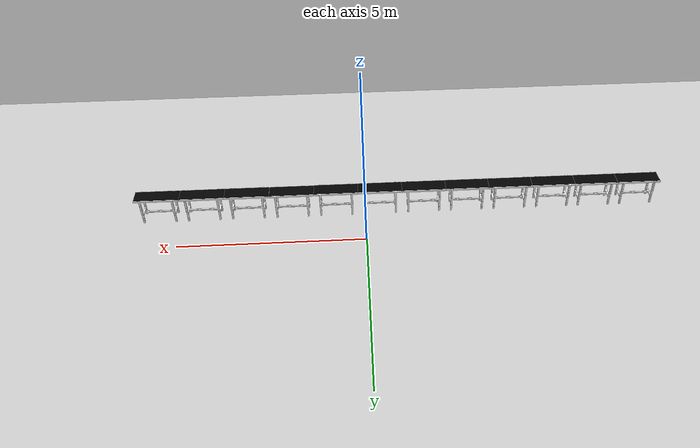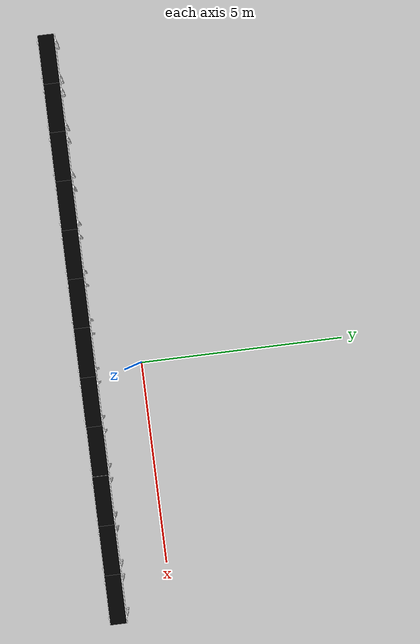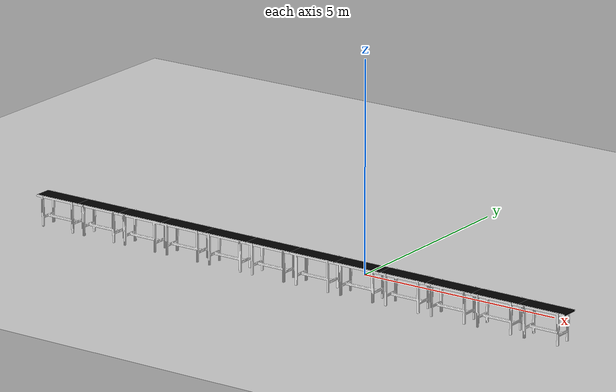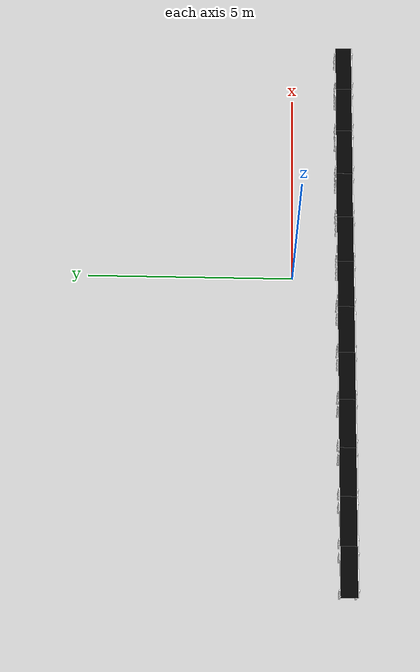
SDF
<sdf version="1.8">
 <world name="empty_world">
  <light name="sun" type="directional">
   <pose>0 0 10 0 0 0</pose>
   <diffuse>0.8 0.8 0.8 1</diffuse>
   <specular>0.2 0.2 0.2 1</specular>
   <attenuation>
    <range>1000</range>
    <constant>0.9</constant>
    <linear>0.01</linear>
    <quadratic>0.001</quadratic>
   </attenuation>
   <direction>-0.5 0.1 -0.9</direction>
  </light>
  <model name="ground_plane">
   <static>true</static>
   <link name="link">
    <collision name="collision">
     <geometry><plane><normal>0 0 1</normal><size>100 100</size></plane></geometry>
    </collision>
    <visual name="visual">
     <geometry><plane><normal>0 0 1</normal><size>100 100</size></plane></geometry>
     <material>
      <ambient>0.8 0.8 0.8 1</ambient>
      <diffuse>0.8 0.8 0.8 1</diffuse>
      <specular>0.8 0.8 0.8 1</specular>
     </material>
    </visual>
   </link>
  </model>
  <model name="conveyor_belt_0">
   <pose>1.980528 -1.256258 0 0 0 1.57</pose>
   <model name="conveyorbelt_fixed_0">
    <static>true</static>
    <link name="belt_visual">
     <visual name="visual">
      <geometry>
       <mesh><scale>1 1 1</scale><uri>model://conveyor_belt/meshes/conveyor_belt.dae</uri></mesh>
      </geometry>
     </visual>
     <collision name="collision">
      <origin xyz="0 0 0" rpy="0.0 0.0 0.0"/>
      <geometry>
       <mesh><scale>1 1 1</scale><uri>model://conveyor_belt/meshes/conveyor_belt.dae</uri></mesh>
      </geometry>
     </collision>
    </link>
   </model>
   <model name="conveyorbelt_moving_0">
    <allow_auto_disable>0</allow_auto_disable>
    <static>false</static>
    <pose>0 0 0.741 0 0 0.0</pose>
    <link name="belt_moving">
     <inertial>
      <mass>100.0</mass>
      <inertia><ixx>0.0</ixx><ixy>0.0</ixy><ixz>0.0</ixz><iyy>0.0</iyy><iyz>0.0</iyz><izz>0.0</izz></inertia>
     </inertial>
     <collision name="belt_collision">
      <geometry><box><size>0.425 1.2 0.00001</size></box></geometry>
      <surface>
       <friction>
        <ode><mu>100.0</mu><mu2>100.0</mu2></ode>
        <torsional><coefficient>1000.0</coefficient><patch_radius>0.1</patch_radius></torsional>
       </friction>
      </surface>
     </collision>
    </link>
   </model>
   <joint name="belt_joint" type="prismatic">
    <parent>conveyorbelt_fixed_0::belt_visual</parent>
    <child>conveyorbelt_moving_0::belt_moving</child>
    <axis><xyz>0 1 0</xyz><limit><lower>0.0</lower><upper>0.01</upper></limit></axis>
   </joint>
  </model>
  <model name="conveyor_belt_1">
   <pose>0.782638 -1.263266 0 0 0 1.57</pose>
   <model name="conveyorbelt_fixed_1">
    <static>true</static>
    <link name="belt_visual">
     <visual name="visual">
      <geometry>
       <mesh><scale>1 1 1</scale><uri>model://conveyor_belt/meshes/conveyor_belt.dae</uri></mesh>
      </geometry>
     </visual>
     <collision name="collision">
      <origin xyz="0 0 0" rpy="0.0 0.0 0.0"/>
      <geometry>
       <mesh><scale>1 1 1</scale><uri>model://conveyor_belt/meshes/conveyor_belt.dae</uri></mesh>
      </geometry>
     </collision>
    </link>
   </model>
   <model name="conveyorbelt_moving_1">
    <allow_auto_disable>0</allow_auto_disable>
    <static>false</static>
    <pose>0 0 0.741 0 0 0.0</pose>
    <link name="belt_moving">
     <inertial>
      <mass>100.0</mass>
      <inertia><ixx>0.0</ixx><ixy>0.0</ixy><ixz>0.0</ixz><iyy>0.0</iyy><iyz>0.0</iyz><izz>0.0</izz></inertia>
     </inertial>
     <collision name="belt_collision">
      <geometry><box><size>0.425 1.2 0.00001</size></box></geometry>
      <surface>
       <friction>
        <ode><mu>100.0</mu><mu2>100.0</mu2></ode>
        <torsional><coefficient>1000.0</coefficient><patch_radius>0.1</patch_radius></torsional>
       </friction>
      </surface>
     </collision>
    </link>
   </model>
   <joint name="belt_joint" type="prismatic">
    <parent>conveyorbelt_fixed_1::belt_visual</parent>
    <child>conveyorbelt_moving_1::belt_moving</child>
    <axis><xyz>0 1 0</xyz><limit><lower>0.0</lower><upper>0.01</upper></limit></axis>
   </joint>
  </model>
  <model name="conveyor_belt_2">
   <pose>-0.415252 -1.263266 0 0 0 1.57</pose>
   <model name="conveyorbelt_fixed_2">
    <static>true</static>
    <link name="belt_visual">
     <visual name="visual">
      <geometry>
       <mesh><scale>1 1 1</scale><uri>model://conveyor_belt/meshes/conveyor_belt.dae</uri></mesh>
      </geometry>
     </visual>
     <collision name="collision">
      <origin xyz="0 0 0" rpy="0.0 0.0 0.0"/>
      <geometry>
       <mesh><scale>1 1 1</scale><uri>model://conveyor_belt/meshes/conveyor_belt.dae</uri></mesh>
      </geometry>
     </collision>
    </link>
   </model>
   <model name="conveyorbelt_moving_2">
    <allow_auto_disable>0</allow_auto_disable>
    <static>false</static>
    <pose>0 0 0.741 0 0 0.0</pose>
    <link name="belt_moving">
     <inertial>
      <mass>100.0</mass>
      <inertia><ixx>0.0</ixx><ixy>0.0</ixy><ixz>0.0</ixz><iyy>0.0</iyy><iyz>0.0</iyz><izz>0.0</izz></inertia>
     </inertial>
     <collision name="belt_collision">
      <geometry><box><size>0.425 1.2 0.00001</size></box></geometry>
      <surface>
       <friction>
        <ode><mu>100.0</mu><mu2>100.0</mu2></ode>
        <torsional><coefficient>1000.0</coefficient><patch_radius>0.1</patch_radius></torsional>
       </friction>
      </surface>
     </collision>
    </link>
   </model>
   <joint name="belt_joint" type="prismatic">
    <parent>conveyorbelt_fixed_2::belt_visual</parent>
    <child>conveyorbelt_moving_2::belt_moving</child>
    <axis><xyz>0 1 0</xyz><limit><lower>0.0</lower><upper>0.01</upper></limit></axis>
   </joint>
  </model>
  <model name="conveyor_belt_3">
   <pose>-1.613142 -1.263266 0 0 0 1.57</pose>
   <model name="conveyorbelt_fixed_3">
    <static>true</static>
    <link name="belt_visual">
     <visual name="visual">
      <geometry>
       <mesh><scale>1 1 1</scale><uri>model://conveyor_belt/meshes/conveyor_belt.dae</uri></mesh>
      </geometry>
     </visual>
     <collision name="collision">
      <origin xyz="0 0 0" rpy="0.0 0.0 0.0"/>
      <geometry>
       <mesh><scale>1 1 1</scale><uri>model://conveyor_belt/meshes/conveyor_belt.dae</uri></mesh>
      </geometry>
     </collision>
    </link>
   </model>
   <model name="conveyorbelt_moving_3">
    <allow_auto_disable>0</allow_auto_disable>
    <static>false</static>
    <pose>0 0 0.741 0 0 0.0</pose>
    <link name="belt_moving">
     <inertial>
      <mass>100.0</mass>
      <inertia><ixx>0.0</ixx><ixy>0.0</ixy><ixz>0.0</ixz><iyy>0.0</iyy><iyz>0.0</iyz><izz>0.0</izz></inertia>
     </inertial>
     <collision name="belt_collision">
      <geometry><box><size>0.425 1.2 0.00001</size></box></geometry>
      <surface>
       <friction>
        <ode><mu>100.0</mu><mu2>100.0</mu2></ode>
        <torsional><coefficient>1000.0</coefficient><patch_radius>0.1</patch_radius></torsional>
       </friction>
      </surface>
     </collision>
    </link>
   </model>
   <joint name="belt_joint" type="prismatic">
    <parent>conveyorbelt_fixed_3::belt_visual</parent>
    <child>conveyorbelt_moving_3::belt_moving</child>
    <axis><xyz>0 1 0</xyz><limit><lower>0.0</lower><upper>0.01</upper></limit></axis>
   </joint>
  </model>
  <model name="conveyor_belt_4">
   <pose>3.185631 -1.263266 0 0 0 1.57</pose>
   <model name="conveyorbelt_fixed_4">
    <static>true</static>
    <link name="belt_visual">
     <visual name="visual">
      <geometry>
       <mesh><scale>1 1 1</scale><uri>model://conveyor_belt/meshes/conveyor_belt.dae</uri></mesh>
      </geometry>
     </visual>
     <collision name="collision">
      <origin xyz="0 0 0" rpy="0.0 0.0 0.0"/>
      <geometry>
       <mesh><scale>1 1 1</scale><uri>model://conveyor_belt/meshes/conveyor_belt.dae</uri></mesh>
      </geometry>
     </collision>
    </link>
   </model>
   <model name="conveyorbelt_moving_4">
    <allow_auto_disable>0</allow_auto_disable>
    <static>false</static>
    <pose>0 0 0.741 0 0 0.0</pose>
    <link name="belt_moving">
     <inertial>
      <mass>100.0</mass>
      <inertia><ixx>0.0</ixx><ixy>0.0</ixy><ixz>0.0</ixz><iyy>0.0</iyy><iyz>0.0</iyz><izz>0.0</izz></inertia>
     </inertial>
     <collision name="belt_collision">
      <geometry><box><size>0.425 1.2 0.00001</size></box></geometry>
      <surface>
       <friction>
        <ode><mu>100.0</mu><mu2>100.0</mu2></ode>
        <torsional><coefficient>1000.0</coefficient><patch_radius>0.1</patch_radius></torsional>
       </friction>
      </surface>
     </collision>
    </link>
   </model>
   <joint name="belt_joint" type="prismatic">
    <parent>conveyorbelt_fixed_4::belt_visual</parent>
    <child>conveyorbelt_moving_4::belt_moving</child>
    <axis><xyz>0 1 0</xyz><limit><lower>0.0</lower><upper>0.01</upper></limit></axis>
   </joint>
  </model>
  <model name="conveyor_belt_5">
   <pose>4.383521 -1.263266 0 0 0 1.57</pose>
   <model name="conveyorbelt_fixed_5">
    <static>true</static>
    <link name="belt_visual">
     <visual name="visual">
      <geometry>
       <mesh><scale>1 1 1</scale><uri>model://conveyor_belt/meshes/conveyor_belt.dae</uri></mesh>
      </geometry>
     </visual>
     <collision name="collision">
      <origin xyz="0 0 0" rpy="0.0 0.0 0.0"/>
      <geometry>
       <mesh><scale>1 1 1</scale><uri>model://conveyor_belt/meshes/conveyor_belt.dae</uri></mesh>
      </geometry>
     </collision>
    </link>
   </model>
   <model name="conveyorbelt_moving_5">
    <allow_auto_disable>0</allow_auto_disable>
    <static>false</static>
    <pose>0 0 0.741 0 0 0.0</pose>
    <link name="belt_moving">
     <inertial>
      <mass>100.0</mass>
      <inertia><ixx>0.0</ixx><ixy>0.0</ixy><ixz>0.0</ixz><iyy>0.0</iyy><iyz>0.0</iyz><izz>0.0</izz></inertia>
     </inertial>
     <collision name="belt_collision">
      <geometry><box><size>0.425 1.2 0.00001</size></box></geometry>
      <surface>
       <friction>
        <ode><mu>100.0</mu><mu2>100.0</mu2></ode>
        <torsional><coefficient>1000.0</coefficient><patch_radius>0.1</patch_radius></torsional>
       </friction>
      </surface>
     </collision>
    </link>
   </model>
   <joint name="belt_joint" type="prismatic">
    <parent>conveyorbelt_fixed_5::belt_visual</parent>
    <child>conveyorbelt_moving_5::belt_moving</child>
    <axis><xyz>0 1 0</xyz><limit><lower>0.0</lower><upper>0.01</upper></limit></axis>
   </joint>
  </model>
  <model name="conveyor_belt_6">
   <pose>-3.989316 -1.260457 0 0 0 1.57</pose>
   <model name="conveyorbelt_fixed_6">
    <static>true</static>
    <link name="belt_visual">
     <visual name="visual">
      <geometry>
       <mesh><scale>1 1 1</scale><uri>model://conveyor_belt/meshes/conveyor_belt.dae</uri></mesh>
      </geometry>
     </visual>
     <collision name="collision">
      <origin xyz="0 0 0" rpy="0.0 0.0 0.0"/>
      <geometry>
       <mesh><scale>1 1 1</scale><uri>model://conveyor_belt/meshes/conveyor_belt.dae</uri></mesh>
      </geometry>
     </collision>
    </link>
   </model>
   <model name="conveyorbelt_moving_6">
    <allow_auto_disable>0</allow_auto_disable>
    <static>false</static>
    <pose>0 0 0.741 0 0 0.0</pose>
    <link name="belt_moving">
     <inertial>
      <mass>100.0</mass>
      <inertia><ixx>0.0</ixx><ixy>0.0</ixy><ixz>0.0</ixz><iyy>0.0</iyy><iyz>0.0</iyz><izz>0.0</izz></inertia>
     </inertial>
     <collision name="belt_collision">
      <geometry><box><size>0.425 1.2 0.00001</size></box></geometry>
      <surface>
       <friction>
        <ode><mu>100.0</mu><mu2>100.0</mu2></ode>
        <torsional><coefficient>1000.0</coefficient><patch_radius>0.1</patch_radius></torsional>
       </friction>
      </surface>
     </collision>
    </link>
   </model>
   <joint name="belt_joint" type="prismatic">
    <parent>conveyorbelt_fixed_6::belt_visual</parent>
    <child>conveyorbelt_moving_6::belt_moving</child>
    <axis><xyz>0 1 0</xyz><limit><lower>0.0</lower><upper>0.01</upper></limit></axis>
   </joint>
  </model>
  <model name="conveyor_belt_7">
   <pose>-5.182224 -1.260457 0 0 0 1.57</pose>
   <model name="conveyorbelt_fixed_7">
    <static>true</static>
    <link name="belt_visual">
     <visual name="visual">
      <geometry>
       <mesh><scale>1 1 1</scale><uri>model://conveyor_belt/meshes/conveyor_belt.dae</uri></mesh>
      </geometry>
     </visual>
     <collision name="collision">
      <origin xyz="0 0 0" rpy="0.0 0.0 0.0"/>
      <geometry>
       <mesh><scale>1 1 1</scale><uri>model://conveyor_belt/meshes/conveyor_belt.dae</uri></mesh>
      </geometry>
     </collision>
    </link>
   </model>
   <model name="conveyorbelt_moving_7">
    <allow_auto_disable>0</allow_auto_disable>
    <static>false</static>
    <pose>0 0 0.741 0 0 0.0</pose>
    <link name="belt_moving">
     <inertial>
      <mass>100.0</mass>
      <inertia><ixx>0.0</ixx><ixy>0.0</ixy><ixz>0.0</ixz><iyy>0.0</iyy><iyz>0.0</iyz><izz>0.0</izz></inertia>
     </inertial>
     <collision name="belt_collision">
      <geometry><box><size>0.425 1.2 0.00001</size></box></geometry>
      <surface>
       <friction>
        <ode><mu>100.0</mu><mu2>100.0</mu2></ode>
        <torsional><coefficient>1000.0</coefficient><patch_radius>0.1</patch_radius></torsional>
       </friction>
      </surface>
     </collision>
    </link>
   </model>
   <joint name="belt_joint" type="prismatic">
    <parent>conveyorbelt_fixed_7::belt_visual</parent>
    <child>conveyorbelt_moving_7::belt_moving</child>
    <axis><xyz>0 1 0</xyz><limit><lower>0.0</lower><upper>0.01</upper></limit></axis>
   </joint>
  </model>
  <model name="conveyor_belt_8">
   <pose>-6.356115 -1.258015 0 0 0 1.57</pose>
   <model name="conveyorbelt_fixed_8">
    <static>true</static>
    <link name="belt_visual">
     <visual name="visual">
      <geometry>
       <mesh><scale>1 1 1</scale><uri>model://conveyor_belt/meshes/conveyor_belt.dae</uri></mesh>
      </geometry>
     </visual>
     <collision name="collision">
      <origin xyz="0 0 0" rpy="0.0 0.0 0.0"/>
      <geometry>
       <mesh><scale>1 1 1</scale><uri>model://conveyor_belt/meshes/conveyor_belt.dae</uri></mesh>
      </geometry>
     </collision>
    </link>
   </model>
   <model name="conveyorbelt_moving_8">
    <allow_auto_disable>0</allow_auto_disable>
    <static>false</static>
    <pose>0 0 0.741 0 0 0.0</pose>
    <link name="belt_moving">
     <inertial>
      <mass>100.0</mass>
      <inertia><ixx>0.0</ixx><ixy>0.0</ixy><ixz>0.0</ixz><iyy>0.0</iyy><iyz>0.0</iyz><izz>0.0</izz></inertia>
     </inertial>
     <collision name="belt_collision">
      <geometry><box><size>0.425 1.2 0.00001</size></box></geometry>
      <surface>
       <friction>
        <ode><mu>100.0</mu><mu2>100.0</mu2></ode>
        <torsional><coefficient>1000.0</coefficient><patch_radius>0.1</patch_radius></torsional>
       </friction>
      </surface>
     </collision>
    </link>
   </model>
   <joint name="belt_joint" type="prismatic">
    <parent>conveyorbelt_fixed_8::belt_visual</parent>
    <child>conveyorbelt_moving_8::belt_moving</child>
    <axis><xyz>0 1 0</xyz><limit><lower>0.0</lower><upper>0.01</upper></limit></axis>
   </joint>
  </model>
  <model name="conveyor_belt_9">
   <pose>-7.537606 -1.257890 0 0 0 1.57</pose>
   <model name="conveyorbelt_fixed_9">
    <static>true</static>
    <link name="belt_visual">
     <visual name="visual">
      <geometry>
       <mesh><scale>1 1 1</scale><uri>model://conveyor_belt/meshes/conveyor_belt.dae</uri></mesh>
      </geometry>
     </visual>
     <collision name="collision">
      <origin xyz="0 0 0" rpy="0.0 0.0 0.0"/>
      <geometry>
       <mesh><scale>1 1 1</scale><uri>model://conveyor_belt/meshes/conveyor_belt.dae</uri></mesh>
      </geometry>
     </collision>
    </link>
   </model>
   <model name="conveyorbelt_moving_9">
    <allow_auto_disable>0</allow_auto_disable>
    <static>false</static>
    <pose>0 0 0.741 0 0 0.0</pose>
    <link name="belt_moving">
     <inertial>
      <mass>100.0</mass>
      <inertia><ixx>0.0</ixx><ixy>0.0</ixy><ixz>0.0</ixz><iyy>0.0</iyy><iyz>0.0</iyz><izz>0.0</izz></inertia>
     </inertial>
     <collision name="belt_collision">
      <geometry><box><size>0.425 1.2 0.00001</size></box></geometry>
      <surface>
       <friction>
        <ode><mu>100.0</mu><mu2>100.0</mu2></ode>
        <torsional><coefficient>1000.0</coefficient><patch_radius>0.1</patch_radius></torsional>
       </friction>
      </surface>
     </collision>
    </link>
   </model>
   <joint name="belt_joint" type="prismatic">
    <parent>conveyorbelt_fixed_9::belt_visual</parent>
    <child>conveyorbelt_moving_9::belt_moving</child>
    <axis><xyz>0 1 0</xyz><limit><lower>0.0</lower><upper>0.01</upper></limit></axis>
   </joint>
  </model>
  <model name="conveyor_belt_10">
   <pose>-2.799608 -1.263694 0 0 0 1.57</pose>
   <model name="conveyorbelt_fixed_10">
    <static>true</static>
    <link name="belt_visual">
     <visual name="visual">
      <geometry>
       <mesh><scale>1 1 1</scale><uri>model://conveyor_belt/meshes/conveyor_belt.dae</uri></mesh>
      </geometry>
     </visual>
     <collision name="collision">
      <origin xyz="0 0 0" rpy="0.0 0.0 0.0"/>
      <geometry>
       <mesh><scale>1 1 1</scale><uri>model://conveyor_belt/meshes/conveyor_belt.dae</uri></mesh>
      </geometry>
     </collision>
    </link>
   </model>
   <model name="conveyorbelt_moving_10">
    <allow_auto_disable>0</allow_auto_disable>
    <static>false</static>
    <pose>0 0 0.741 0 0 0.0</pose>
    <link name="belt_moving">
     <inertial>
      <mass>100.0</mass>
      <inertia><ixx>0.0</ixx><ixy>0.0</ixy><ixz>0.0</ixz><iyy>0.0</iyy><iyz>0.0</iyz><izz>0.0</izz></inertia>
     </inertial>
     <collision name="belt_collision">
      <geometry><box><size>0.425 1.2 0.00001</size></box></geometry>
      <surface>
       <friction>
        <ode><mu>100.0</mu><mu2>100.0</mu2></ode>
        <torsional><coefficient>1000.0</coefficient><patch_radius>0.1</patch_radius></torsional>
       </friction>
      </surface>
     </collision>
    </link>
   </model>
   <joint name="belt_joint" type="prismatic">
    <parent>conveyorbelt_fixed_10::belt_visual</parent>
    <child>conveyorbelt_moving_10::belt_moving</child>
    <axis><xyz>0 1 0</xyz><limit><lower>0.0</lower><upper>0.01</upper></limit></axis>
   </joint>
  </model>
  <model name="conveyor_belt_11">
   <pose>5.580262 -1.267404 0 0 0 1.57</pose>
   <model name="conveyorbelt_fixed_11">
    <static>true</static>
    <link name="belt_visual">
     <visual name="visual">
      <geometry>
       <mesh><scale>1 1 1</scale><uri>model://conveyor_belt/meshes/conveyor_belt.dae</uri></mesh>
      </geometry>
     </visual>
     <collision name="collision">
      <origin xyz="0 0 0" rpy="0.0 0.0 0.0"/>
      <geometry>
       <mesh><scale>1 1 1</scale><uri>model://conveyor_belt/meshes/conveyor_belt.dae</uri></mesh>
      </geometry>
     </collision>
    </link>
   </model>
   <model name="conveyorbelt_moving_11">
    <allow_auto_disable>0</allow_auto_disable>
    <static>false</static>
    <pose>0 0 0.741 0 0 0.0</pose>
    <link name="belt_moving">
     <inertial>
      <mass>100.0</mass>
      <inertia><ixx>0.0</ixx><ixy>0.0</ixy><ixz>0.0</ixz><iyy>0.0</iyy><iyz>0.0</iyz><izz>0.0</izz></inertia>
     </inertial>
     <collision name="belt_collision">
      <geometry><box><size>0.425 1.2 0.00001</size></box></geometry>
      <surface>
       <friction>
        <ode><mu>100.0</mu><mu2>100.0</mu2></ode>
        <torsional><coefficient>1000.0</coefficient><patch_radius>0.1</patch_radius></torsional>
       </friction>
      </surface>
     </collision>
    </link>
   </model>
   <joint name="belt_joint" type="prismatic">
    <parent>conveyorbelt_fixed_11::belt_visual</parent>
    <child>conveyorbelt_moving_11::belt_moving</child>
    <axis><xyz>0 1 0</xyz><limit><lower>0.0</lower><upper>0.01</upper></limit></axis>
   </joint>
  </model>
 </world>
</sdf>
